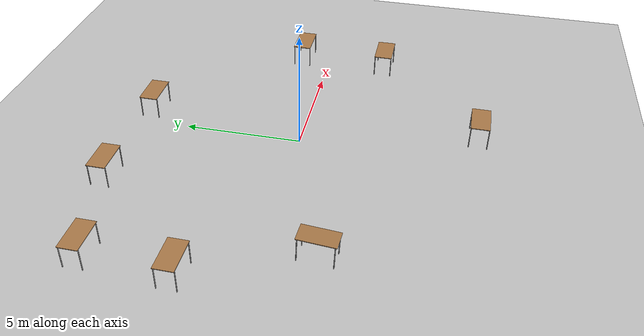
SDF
<sdf version="1.6">
 <world name="default">
  <model name="ground_plane">
   <static>1</static>
   <link name="link">
    <collision name="collision">
     <geometry><plane><normal>0 0 1</normal><size>100 100</size></plane></geometry>
     <surface>
      <contact><collide_bitmask>65535</collide_bitmask></contact>
      <friction><ode><mu>100</mu><mu2>50</mu2></ode></friction>
     </surface>
    </collision>
    <visual name="visual">
     <cast_shadows>0</cast_shadows>
     <geometry><plane><normal>0 0 1</normal><size>100 100</size></plane></geometry>
     <material>
      <script><uri>file://media/materials/scripts/gazebo.material</uri><name>Gazebo/Grey</name></script>
     </material>
    </visual>
   </link>
  </model>
  <model name="model_2">
   <model name="table">
    <static>1</static>
    <link name="link">
     <collision name="surface">
      <pose>0 0 1 0 -0 0</pose>
      <geometry><box><size>1.5 0.8 0.03</size></box></geometry>
      <surface><friction><ode><mu>0.6</mu><mu2>0.6</mu2></ode></friction></surface>
     </collision>
     <visual name="visual1">
      <pose>0 0 1 0 -0 0</pose>
      <geometry><box><size>1.5 0.8 0.03</size></box></geometry>
      <material>
       <script><uri>file://media/materials/scripts/gazebo.material</uri><name>Gazebo/Wood</name></script>
      </material>
     </visual>
     <collision name="front_left_leg">
      <pose>0.68 0.38 0.5 0 -0 0</pose>
      <geometry><cylinder><radius>0.02</radius><length>1</length></cylinder></geometry>
     </collision>
     <visual name="front_left_leg">
      <pose>0.68 0.38 0.5 0 -0 0</pose>
      <geometry><cylinder><radius>0.02</radius><length>1</length></cylinder></geometry>
      <material>
       <script><uri>file://media/materials/scripts/gazebo.material</uri><name>Gazebo/Grey</name></script>
      </material>
     </visual>
     <collision name="front_right_leg">
      <pose>0.68 -0.38 0.5 0 -0 0</pose>
      <geometry><cylinder><radius>0.02</radius><length>1</length></cylinder></geometry>
     </collision>
     <visual name="front_right_leg">
      <pose>0.68 -0.38 0.5 0 -0 0</pose>
      <geometry><cylinder><radius>0.02</radius><length>1</length></cylinder></geometry>
      <material>
       <script><uri>file://media/materials/scripts/gazebo.material</uri><name>Gazebo/Grey</name></script>
      </material>
     </visual>
     <collision name="back_right_leg">
      <pose>-0.68 -0.38 0.5 0 -0 0</pose>
      <geometry><cylinder><radius>0.02</radius><length>1</length></cylinder></geometry>
     </collision>
     <visual name="back_right_leg">
      <pose>-0.68 -0.38 0.5 0 -0 0</pose>
      <geometry><cylinder><radius>0.02</radius><length>1</length></cylinder></geometry>
      <material>
       <script><uri>file://media/materials/scripts/gazebo.material</uri><name>Gazebo/Grey</name></script>
      </material>
     </visual>
     <collision name="back_left_leg">
      <pose>-0.68 0.38 0.5 0 -0 0</pose>
      <geometry><cylinder><radius>0.02</radius><length>1</length></cylinder></geometry>
     </collision>
     <visual name="back_left_leg">
      <pose>-0.68 0.38 0.5 0 -0 0</pose>
      <geometry><cylinder><radius>0.02</radius><length>1</length></cylinder></geometry>
      <material>
       <script><uri>file://media/materials/scripts/gazebo.material</uri><name>Gazebo/Grey</name></script>
      </material>
     </visual>
    </link>
    <pose>-7.17173 1.02852 0.005879 0 -0 0</pose>
   </model>
   <model name="table_clone">
    <static>1</static>
    <link name="link">
     <collision name="surface">
      <pose>0 0 1 0 -0 0</pose>
      <geometry><box><size>1.5 0.8 0.03</size></box></geometry>
      <surface><friction><ode><mu>0.6</mu><mu2>0.6</mu2></ode></friction></surface>
     </collision>
     <visual name="visual1">
      <pose>0 0 1 0 -0 0</pose>
      <geometry><box><size>1.5 0.8 0.03</size></box></geometry>
      <material>
       <script><uri>file://media/materials/scripts/gazebo.material</uri><name>Gazebo/Wood</name></script>
      </material>
     </visual>
     <collision name="front_left_leg">
      <pose>0.68 0.38 0.5 0 -0 0</pose>
      <geometry><cylinder><radius>0.02</radius><length>1</length></cylinder></geometry>
     </collision>
     <visual name="front_left_leg">
      <pose>0.68 0.38 0.5 0 -0 0</pose>
      <geometry><cylinder><radius>0.02</radius><length>1</length></cylinder></geometry>
      <material>
       <script><uri>file://media/materials/scripts/gazebo.material</uri><name>Gazebo/Grey</name></script>
      </material>
     </visual>
     <collision name="front_right_leg">
      <pose>0.68 -0.38 0.5 0 -0 0</pose>
      <geometry><cylinder><radius>0.02</radius><length>1</length></cylinder></geometry>
     </collision>
     <visual name="front_right_leg">
      <pose>0.68 -0.38 0.5 0 -0 0</pose>
      <geometry><cylinder><radius>0.02</radius><length>1</length></cylinder></geometry>
      <material>
       <script><uri>file://media/materials/scripts/gazebo.material</uri><name>Gazebo/Grey</name></script>
      </material>
     </visual>
     <collision name="back_right_leg">
      <pose>-0.68 -0.38 0.5 0 -0 0</pose>
      <geometry><cylinder><radius>0.02</radius><length>1</length></cylinder></geometry>
     </collision>
     <visual name="back_right_leg">
      <pose>-0.68 -0.38 0.5 0 -0 0</pose>
      <geometry><cylinder><radius>0.02</radius><length>1</length></cylinder></geometry>
      <material>
       <script><uri>file://media/materials/scripts/gazebo.material</uri><name>Gazebo/Grey</name></script>
      </material>
     </visual>
     <collision name="back_left_leg">
      <pose>-0.68 0.38 0.5 0 -0 0</pose>
      <geometry><cylinder><radius>0.02</radius><length>1</length></cylinder></geometry>
     </collision>
     <visual name="back_left_leg">
      <pose>-0.68 0.38 0.5 0 -0 0</pose>
      <geometry><cylinder><radius>0.02</radius><length>1</length></cylinder></geometry>
      <material>
       <script><uri>file://media/materials/scripts/gazebo.material</uri><name>Gazebo/Grey</name></script>
      </material>
     </visual>
    </link>
    <pose>-6.95127 4.56782 -0.033972 0 -0 0</pose>
   </model>
   <model name="table_clone_0">
    <static>1</static>
    <link name="link">
     <collision name="surface">
      <pose>0 0 1 0 -0 0</pose>
      <geometry><box><size>1.5 0.8 0.03</size></box></geometry>
      <surface><friction><ode><mu>0.6</mu><mu2>0.6</mu2></ode></friction></surface>
     </collision>
     <visual name="visual1">
      <pose>0 0 1 0 -0 0</pose>
      <geometry><box><size>1.5 0.8 0.03</size></box></geometry>
      <material>
       <script><uri>file://media/materials/scripts/gazebo.material</uri><name>Gazebo/Wood</name></script>
      </material>
     </visual>
     <collision name="front_left_leg">
      <pose>0.68 0.38 0.5 0 -0 0</pose>
      <geometry><cylinder><radius>0.02</radius><length>1</length></cylinder></geometry>
     </collision>
     <visual name="front_left_leg">
      <pose>0.68 0.38 0.5 0 -0 0</pose>
      <geometry><cylinder><radius>0.02</radius><length>1</length></cylinder></geometry>
      <material>
       <script><uri>file://media/materials/scripts/gazebo.material</uri><name>Gazebo/Grey</name></script>
      </material>
     </visual>
     <collision name="front_right_leg">
      <pose>0.68 -0.38 0.5 0 -0 0</pose>
      <geometry><cylinder><radius>0.02</radius><length>1</length></cylinder></geometry>
     </collision>
     <visual name="front_right_leg">
      <pose>0.68 -0.38 0.5 0 -0 0</pose>
      <geometry><cylinder><radius>0.02</radius><length>1</length></cylinder></geometry>
      <material>
       <script><uri>file://media/materials/scripts/gazebo.material</uri><name>Gazebo/Grey</name></script>
      </material>
     </visual>
     <collision name="back_right_leg">
      <pose>-0.68 -0.38 0.5 0 -0 0</pose>
      <geometry><cylinder><radius>0.02</radius><length>1</length></cylinder></geometry>
     </collision>
     <visual name="back_right_leg">
      <pose>-0.68 -0.38 0.5 0 -0 0</pose>
      <geometry><cylinder><radius>0.02</radius><length>1</length></cylinder></geometry>
      <material>
       <script><uri>file://media/materials/scripts/gazebo.material</uri><name>Gazebo/Grey</name></script>
      </material>
     </visual>
     <collision name="back_left_leg">
      <pose>-0.68 0.38 0.5 0 -0 0</pose>
      <geometry><cylinder><radius>0.02</radius><length>1</length></cylinder></geometry>
     </collision>
     <visual name="back_left_leg">
      <pose>-0.68 0.38 0.5 0 -0 0</pose>
      <geometry><cylinder><radius>0.02</radius><length>1</length></cylinder></geometry>
      <material>
       <script><uri>file://media/materials/scripts/gazebo.material</uri><name>Gazebo/Grey</name></script>
      </material>
     </visual>
    </link>
    <pose>-5.29399 -3.59772 0.095578 0.00162 -0.033332 1.52222</pose>
   </model>
   <model name="table_clone_1">
    <static>1</static>
    <link name="link">
     <collision name="surface">
      <pose>0 0 1 0 -0 0</pose>
      <geometry><box><size>1.5 0.8 0.03</size></box></geometry>
      <surface><friction><ode><mu>0.6</mu><mu2>0.6</mu2></ode></friction></surface>
     </collision>
     <visual name="visual1">
      <pose>0 0 1 0 -0 0</pose>
      <geometry><box><size>1.5 0.8 0.03</size></box></geometry>
      <material>
       <script><uri>file://media/materials/scripts/gazebo.material</uri><name>Gazebo/Wood</name></script>
      </material>
     </visual>
     <collision name="front_left_leg">
      <pose>0.68 0.38 0.5 0 -0 0</pose>
      <geometry><cylinder><radius>0.02</radius><length>1</length></cylinder></geometry>
     </collision>
     <visual name="front_left_leg">
      <pose>0.68 0.38 0.5 0 -0 0</pose>
      <geometry><cylinder><radius>0.02</radius><length>1</length></cylinder></geometry>
      <material>
       <script><uri>file://media/materials/scripts/gazebo.material</uri><name>Gazebo/Grey</name></script>
      </material>
     </visual>
     <collision name="front_right_leg">
      <pose>0.68 -0.38 0.5 0 -0 0</pose>
      <geometry><cylinder><radius>0.02</radius><length>1</length></cylinder></geometry>
     </collision>
     <visual name="front_right_leg">
      <pose>0.68 -0.38 0.5 0 -0 0</pose>
      <geometry><cylinder><radius>0.02</radius><length>1</length></cylinder></geometry>
      <material>
       <script><uri>file://media/materials/scripts/gazebo.material</uri><name>Gazebo/Grey</name></script>
      </material>
     </visual>
     <collision name="back_right_leg">
      <pose>-0.68 -0.38 0.5 0 -0 0</pose>
      <geometry><cylinder><radius>0.02</radius><length>1</length></cylinder></geometry>
     </collision>
     <visual name="back_right_leg">
      <pose>-0.68 -0.38 0.5 0 -0 0</pose>
      <geometry><cylinder><radius>0.02</radius><length>1</length></cylinder></geometry>
      <material>
       <script><uri>file://media/materials/scripts/gazebo.material</uri><name>Gazebo/Grey</name></script>
      </material>
     </visual>
     <collision name="back_left_leg">
      <pose>-0.68 0.38 0.5 0 -0 0</pose>
      <geometry><cylinder><radius>0.02</radius><length>1</length></cylinder></geometry>
     </collision>
     <visual name="back_left_leg">
      <pose>-0.68 0.38 0.5 0 -0 0</pose>
      <geometry><cylinder><radius>0.02</radius><length>1</length></cylinder></geometry>
      <material>
       <script><uri>file://media/materials/scripts/gazebo.material</uri><name>Gazebo/Grey</name></script>
      </material>
     </visual>
    </link>
    <pose>8.16305 -4.11748 0.005879 0 -0 0</pose>
   </model>
   <model name="table_clone_1_clone">
    <static>1</static>
    <link name="link">
     <collision name="surface">
      <pose>0 0 1 0 -0 0</pose>
      <geometry><box><size>1.5 0.8 0.03</size></box></geometry>
      <surface><friction><ode><mu>0.6</mu><mu2>0.6</mu2></ode></friction></surface>
     </collision>
     <visual name="visual1">
      <pose>0 0 1 0 -0 0</pose>
      <geometry><box><size>1.5 0.8 0.03</size></box></geometry>
      <material>
       <script><uri>file://media/materials/scripts/gazebo.material</uri><name>Gazebo/Wood</name></script>
      </material>
     </visual>
     <collision name="front_left_leg">
      <pose>0.68 0.38 0.5 0 -0 0</pose>
      <geometry><cylinder><radius>0.02</radius><length>1</length></cylinder></geometry>
     </collision>
     <visual name="front_left_leg">
      <pose>0.68 0.38 0.5 0 -0 0</pose>
      <geometry><cylinder><radius>0.02</radius><length>1</length></cylinder></geometry>
      <material>
       <script><uri>file://media/materials/scripts/gazebo.material</uri><name>Gazebo/Grey</name></script>
      </material>
     </visual>
     <collision name="front_right_leg">
      <pose>0.68 -0.38 0.5 0 -0 0</pose>
      <geometry><cylinder><radius>0.02</radius><length>1</length></cylinder></geometry>
     </collision>
     <visual name="front_right_leg">
      <pose>0.68 -0.38 0.5 0 -0 0</pose>
      <geometry><cylinder><radius>0.02</radius><length>1</length></cylinder></geometry>
      <material>
       <script><uri>file://media/materials/scripts/gazebo.material</uri><name>Gazebo/Grey</name></script>
      </material>
     </visual>
     <collision name="back_right_leg">
      <pose>-0.68 -0.38 0.5 0 -0 0</pose>
      <geometry><cylinder><radius>0.02</radius><length>1</length></cylinder></geometry>
     </collision>
     <visual name="back_right_leg">
      <pose>-0.68 -0.38 0.5 0 -0 0</pose>
      <geometry><cylinder><radius>0.02</radius><length>1</length></cylinder></geometry>
      <material>
       <script><uri>file://media/materials/scripts/gazebo.material</uri><name>Gazebo/Grey</name></script>
      </material>
     </visual>
     <collision name="back_left_leg">
      <pose>-0.68 0.38 0.5 0 -0 0</pose>
      <geometry><cylinder><radius>0.02</radius><length>1</length></cylinder></geometry>
     </collision>
     <visual name="back_left_leg">
      <pose>-0.68 0.38 0.5 0 -0 0</pose>
      <geometry><cylinder><radius>0.02</radius><length>1</length></cylinder></geometry>
      <material>
       <script><uri>file://media/materials/scripts/gazebo.material</uri><name>Gazebo/Grey</name></script>
      </material>
     </visual>
    </link>
    <pose>8.28303 -0.127677 -0.007262 0 -0 0</pose>
   </model>
   <model name="table_clone_1_clone_0">
    <static>1</static>
    <link name="link">
     <collision name="surface">
      <pose>0 0 1 0 -0 0</pose>
      <geometry><box><size>1.5 0.8 0.03</size></box></geometry>
      <surface><friction><ode><mu>0.6</mu><mu2>0.6</mu2></ode></friction></surface>
     </collision>
     <visual name="visual1">
      <pose>0 0 1 0 -0 0</pose>
      <geometry><box><size>1.5 0.8 0.03</size></box></geometry>
      <material>
       <script><uri>file://media/materials/scripts/gazebo.material</uri><name>Gazebo/Wood</name></script>
      </material>
     </visual>
     <collision name="front_left_leg">
      <pose>0.68 0.38 0.5 0 -0 0</pose>
      <geometry><cylinder><radius>0.02</radius><length>1</length></cylinder></geometry>
     </collision>
     <visual name="front_left_leg">
      <pose>0.68 0.38 0.5 0 -0 0</pose>
      <geometry><cylinder><radius>0.02</radius><length>1</length></cylinder></geometry>
      <material>
       <script><uri>file://media/materials/scripts/gazebo.material</uri><name>Gazebo/Grey</name></script>
      </material>
     </visual>
     <collision name="front_right_leg">
      <pose>0.68 -0.38 0.5 0 -0 0</pose>
      <geometry><cylinder><radius>0.02</radius><length>1</length></cylinder></geometry>
     </collision>
     <visual name="front_right_leg">
      <pose>0.68 -0.38 0.5 0 -0 0</pose>
      <geometry><cylinder><radius>0.02</radius><length>1</length></cylinder></geometry>
      <material>
       <script><uri>file://media/materials/scripts/gazebo.material</uri><name>Gazebo/Grey</name></script>
      </material>
     </visual>
     <collision name="back_right_leg">
      <pose>-0.68 -0.38 0.5 0 -0 0</pose>
      <geometry><cylinder><radius>0.02</radius><length>1</length></cylinder></geometry>
     </collision>
     <visual name="back_right_leg">
      <pose>-0.68 -0.38 0.5 0 -0 0</pose>
      <geometry><cylinder><radius>0.02</radius><length>1</length></cylinder></geometry>
      <material>
       <script><uri>file://media/materials/scripts/gazebo.material</uri><name>Gazebo/Grey</name></script>
      </material>
     </visual>
     <collision name="back_left_leg">
      <pose>-0.68 0.38 0.5 0 -0 0</pose>
      <geometry><cylinder><radius>0.02</radius><length>1</length></cylinder></geometry>
     </collision>
     <visual name="back_left_leg">
      <pose>-0.68 0.38 0.5 0 -0 0</pose>
      <geometry><cylinder><radius>0.02</radius><length>1</length></cylinder></geometry>
      <material>
       <script><uri>file://media/materials/scripts/gazebo.material</uri><name>Gazebo/Grey</name></script>
      </material>
     </visual>
    </link>
    <pose>2.40207 5.49447 -0.059796 0 -0 0</pose>
   </model>
   <model name="table_clone_1_clone_1">
    <static>1</static>
    <link name="link">
     <collision name="surface">
      <pose>0 0 1 0 -0 0</pose>
      <geometry><box><size>1.5 0.8 0.03</size></box></geometry>
      <surface><friction><ode><mu>0.6</mu><mu2>0.6</mu2></ode></friction></surface>
     </collision>
     <visual name="visual1">
      <pose>0 0 1 0 -0 0</pose>
      <geometry><box><size>1.5 0.8 0.03</size></box></geometry>
      <material>
       <script><uri>file://media/materials/scripts/gazebo.material</uri><name>Gazebo/Wood</name></script>
      </material>
     </visual>
     <collision name="front_left_leg">
      <pose>0.68 0.38 0.5 0 -0 0</pose>
      <geometry><cylinder><radius>0.02</radius><length>1</length></cylinder></geometry>
     </collision>
     <visual name="front_left_leg">
      <pose>0.68 0.38 0.5 0 -0 0</pose>
      <geometry><cylinder><radius>0.02</radius><length>1</length></cylinder></geometry>
      <material>
       <script><uri>file://media/materials/scripts/gazebo.material</uri><name>Gazebo/Grey</name></script>
      </material>
     </visual>
     <collision name="front_right_leg">
      <pose>0.68 -0.38 0.5 0 -0 0</pose>
      <geometry><cylinder><radius>0.02</radius><length>1</length></cylinder></geometry>
     </collision>
     <visual name="front_right_leg">
      <pose>0.68 -0.38 0.5 0 -0 0</pose>
      <geometry><cylinder><radius>0.02</radius><length>1</length></cylinder></geometry>
      <material>
       <script><uri>file://media/materials/scripts/gazebo.material</uri><name>Gazebo/Grey</name></script>
      </material>
     </visual>
     <collision name="back_right_leg">
      <pose>-0.68 -0.38 0.5 0 -0 0</pose>
      <geometry><cylinder><radius>0.02</radius><length>1</length></cylinder></geometry>
     </collision>
     <visual name="back_right_leg">
      <pose>-0.68 -0.38 0.5 0 -0 0</pose>
      <geometry><cylinder><radius>0.02</radius><length>1</length></cylinder></geometry>
      <material>
       <script><uri>file://media/materials/scripts/gazebo.material</uri><name>Gazebo/Grey</name></script>
      </material>
     </visual>
     <collision name="back_left_leg">
      <pose>-0.68 0.38 0.5 0 -0 0</pose>
      <geometry><cylinder><radius>0.02</radius><length>1</length></cylinder></geometry>
     </collision>
     <visual name="back_left_leg">
      <pose>-0.68 0.38 0.5 0 -0 0</pose>
      <geometry><cylinder><radius>0.02</radius><length>1</length></cylinder></geometry>
      <material>
       <script><uri>file://media/materials/scripts/gazebo.material</uri><name>Gazebo/Grey</name></script>
      </material>
     </visual>
    </link>
    <pose>-2.64428 5.59611 -0.012185 0 -0 0</pose>
   </model>
   <model name="table_clone_1_clone_2">
    <static>1</static>
    <link name="link">
     <collision name="surface">
      <pose>0 0 1 0 -0 0</pose>
      <geometry><box><size>1.5 0.8 0.03</size></box></geometry>
      <surface><friction><ode><mu>0.6</mu><mu2>0.6</mu2></ode></friction></surface>
     </collision>
     <visual name="visual1">
      <pose>0 0 1 0 -0 0</pose>
      <geometry><box><size>1.5 0.8 0.03</size></box></geometry>
      <material>
       <script><uri>file://media/materials/scripts/gazebo.material</uri><name>Gazebo/Wood</name></script>
      </material>
     </visual>
     <collision name="front_left_leg">
      <pose>0.68 0.38 0.5 0 -0 0</pose>
      <geometry><cylinder><radius>0.02</radius><length>1</length></cylinder></geometry>
     </collision>
     <visual name="front_left_leg">
      <pose>0.68 0.38 0.5 0 -0 0</pose>
      <geometry><cylinder><radius>0.02</radius><length>1</length></cylinder></geometry>
      <material>
       <script><uri>file://media/materials/scripts/gazebo.material</uri><name>Gazebo/Grey</name></script>
      </material>
     </visual>
     <collision name="front_right_leg">
      <pose>0.68 -0.38 0.5 0 -0 0</pose>
      <geometry><cylinder><radius>0.02</radius><length>1</length></cylinder></geometry>
     </collision>
     <visual name="front_right_leg">
      <pose>0.68 -0.38 0.5 0 -0 0</pose>
      <geometry><cylinder><radius>0.02</radius><length>1</length></cylinder></geometry>
      <material>
       <script><uri>file://media/materials/scripts/gazebo.material</uri><name>Gazebo/Grey</name></script>
      </material>
     </visual>
     <collision name="back_right_leg">
      <pose>-0.68 -0.38 0.5 0 -0 0</pose>
      <geometry><cylinder><radius>0.02</radius><length>1</length></cylinder></geometry>
     </collision>
     <visual name="back_right_leg">
      <pose>-0.68 -0.38 0.5 0 -0 0</pose>
      <geometry><cylinder><radius>0.02</radius><length>1</length></cylinder></geometry>
      <material>
       <script><uri>file://media/materials/scripts/gazebo.material</uri><name>Gazebo/Grey</name></script>
      </material>
     </visual>
     <collision name="back_left_leg">
      <pose>-0.68 0.38 0.5 0 -0 0</pose>
      <geometry><cylinder><radius>0.02</radius><length>1</length></cylinder></geometry>
     </collision>
     <visual name="back_left_leg">
      <pose>-0.68 0.38 0.5 0 -0 0</pose>
      <geometry><cylinder><radius>0.02</radius><length>1</length></cylinder></geometry>
      <material>
       <script><uri>file://media/materials/scripts/gazebo.material</uri><name>Gazebo/Grey</name></script>
      </material>
     </visual>
    </link>
    <pose>3.21313 -8.84404 0.005879 0 -0 0</pose>
   </model>
   <static>0</static>
   <pose>-1.33832 1.41163 0.033972 0 -0 0</pose>
  </model>
 </world>
</sdf>
